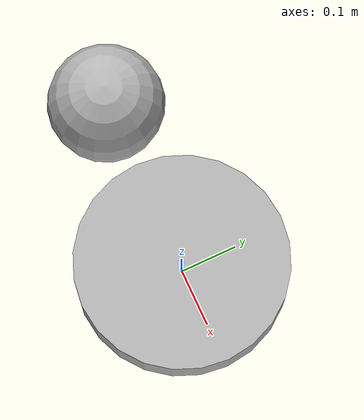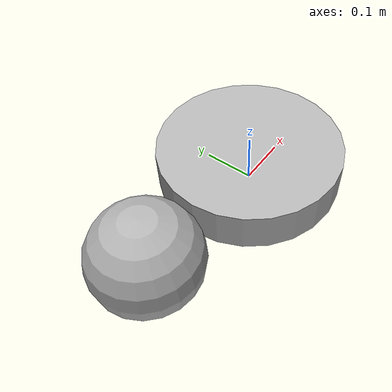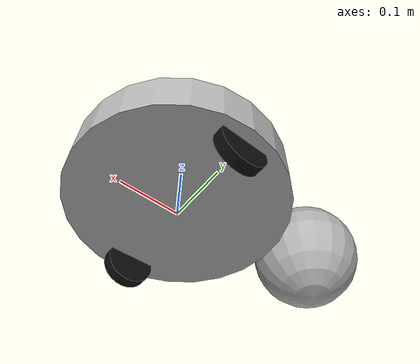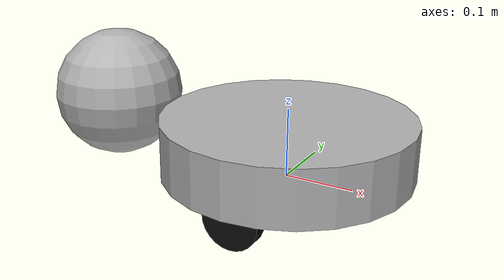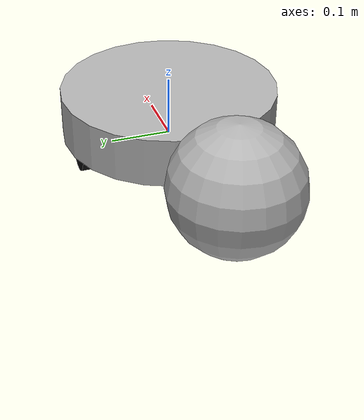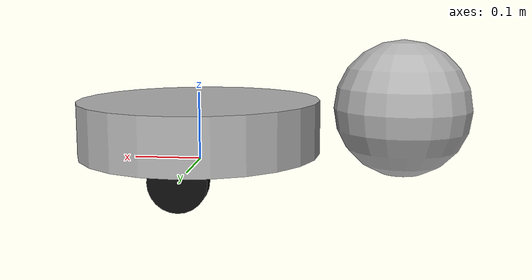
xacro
<?xml version="1.0"?>
<robot xmlns:xacro="http://ros.org/wiki/xacro" name="pylesos">

  <!-- === Константы === -->
  <xacro:property name="base_radius" value="0.18"/>
  <xacro:property name="base_length" value="0.08"/>
  <xacro:property name="wheel_radius" value="0.04"/>
  <xacro:property name="wheel_length" value="0.02"/>
  <xacro:property name="caster_radius" value="0.1"/>
  <xacro:property name="caster_visual_z" value="0.08"/>
  <xacro:property name="caster_collision_z" value="0.05"/>
  <xacro:property name="wheel_offset_y" value="0.15"/>
  <xacro:property name="caster_offset_x" value="-0.15"/>

  <xacro:property name="silver_color" value="0.7 0.7 0.7 1.0"/>
  <xacro:property name="black_color" value="0.05 0.05 0.05 1.0"/>
  <xacro:property name="darkgray_color" value="0.3 0.3 0.3 1.0"/>

  <!-- === Материалы === -->
  <material name="silver">
    <color rgba="${silver_color}"/>
  </material>
  <material name="black">
    <color rgba="${black_color}"/>
  </material>
  <material name="darkgray">
    <color rgba="${darkgray_color}"/>
  </material>

  <!-- === Макрос для колеса === -->
  <xacro:macro name="wheel" params="name y material">
    <link name="${name}">
      <visual>
        <origin xyz="0 0 0" rpy="1.5708 0 0"/>
        <geometry>
          <cylinder radius="${wheel_radius}" length="${wheel_length}"/>
        </geometry>
        <material name="${material}"/>
      </visual>
      <collision>
        <origin xyz="0 0 0" rpy="1.5708 0 0"/>
        <geometry>
          <cylinder radius="${wheel_radius}" length="${wheel_length}"/>
        </geometry>
      </collision>
      <inertial>
        <mass value="0.1"/>
        <inertia ixx="0.001" ixy="0" ixz="0" iyy="0.001" iyz="0" izz="0.001"/>
      </inertial>
    </link>
    <joint name="${name}_joint" type="continuous">
      <parent link="base_link"/>
      <child link="${name}"/>
      <origin xyz="0 ${y} 0" rpy="0 0 0"/>
      <axis xyz="0 1 0"/>
    </joint>
  </xacro:macro>

  <!-- === База робота === -->
  <link name="base_link">
    <visual>
      <origin xyz="0 0 0.05"/>
      <geometry>
        <cylinder radius="${base_radius}" length="${base_length}"/>
      </geometry>
      <material name="silver"/>
    </visual>
    <collision>
      <origin xyz="0 0 0.05"/>
      <geometry>
        <cylinder radius="${base_radius}" length="${base_length}"/>
      </geometry>
    </collision>
    <inertial>
      <mass value="2.0"/>
      <inertia ixx="0.02" ixy="0" ixz="0" iyy="0.02" iyz="0" izz="0.03"/>
    </inertial>
  </link>

  <!-- === Основные колеса === -->
  <xacro:wheel name="left_wheel"  y="${wheel_offset_y}" material="black"/>
  <xacro:wheel name="right_wheel" y="-${wheel_offset_y}" material="black"/>

  <!-- === Опорное колесо === -->
  <link name="caster_wheel">
    <visual>
      <geometry>
        <sphere radius="${caster_radius}"/>
      </geometry>
      <material name="silver"/>
      <origin xyz="${caster_offset_x} 0 ${caster_visual_z}"/>
    </visual>
    <collision>
      <geometry>
        <sphere radius="0.2"/>
      </geometry>
      <origin xyz="${caster_offset_x} 0 ${caster_collision_z}"/>
    </collision>
    <inertial>
      <mass value="0.1"/>
      <inertia ixx="0.001" iyy="0.001" izz="0.001"/>
    </inertial>
  </link>
  <joint name="caster_joint" type="fixed">
    <parent link="base_link"/>
    <child link="caster_wheel"/>
    <origin xyz="${caster_offset_x} 0 0.0"/>
  </joint>

</robot>
